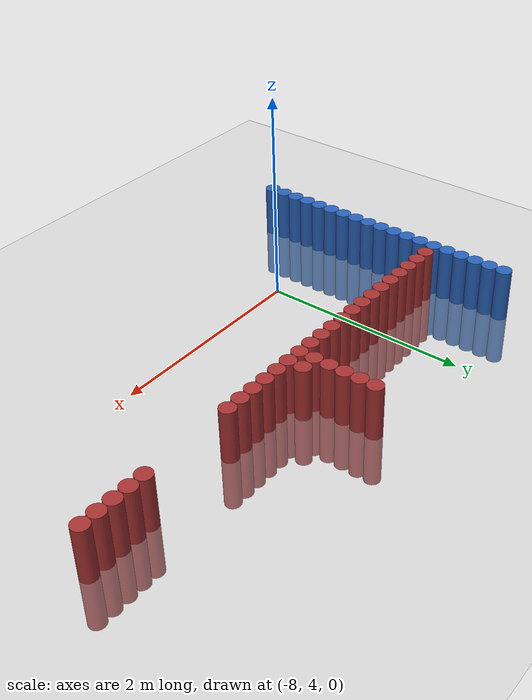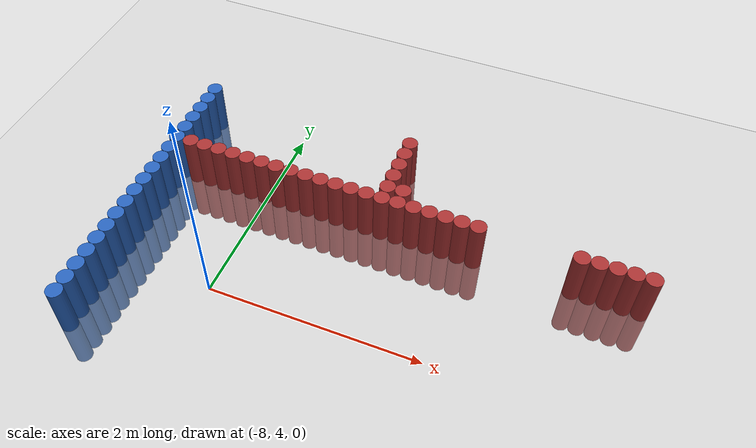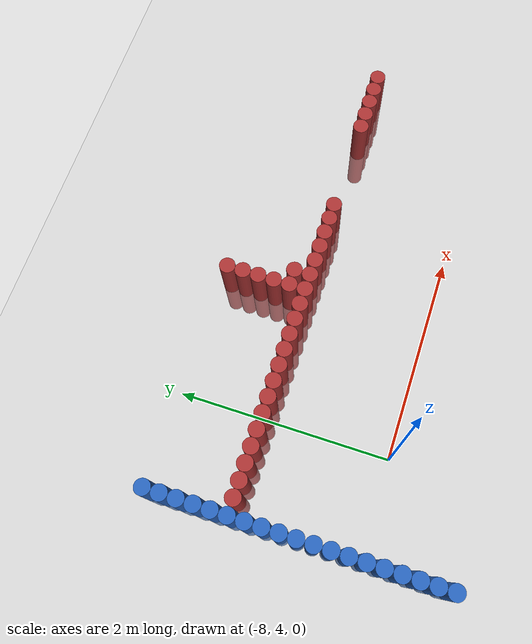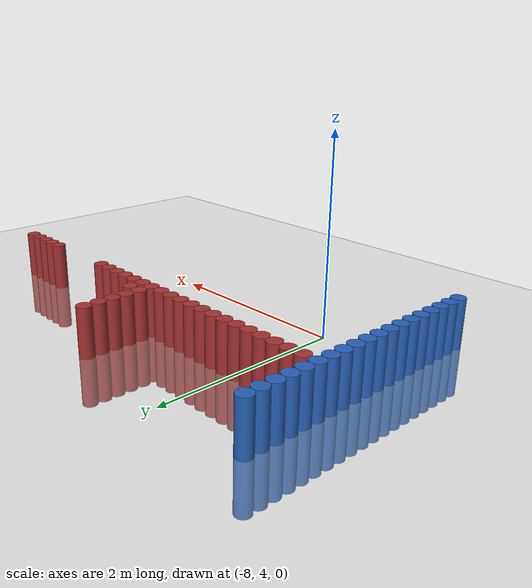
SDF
<sdf version="1.6">
 <world name="default">
  <model name="ground_plane">
   <static>1</static>
   <link name="link">
    <collision name="collision">
     <geometry><plane><normal>0 0 1</normal><size>100 100</size></plane></geometry>
     <surface><friction><ode><mu>100</mu><mu2>50</mu2></ode></friction></surface>
    </collision>
    <visual name="visual">
     <cast_shadows>0</cast_shadows>
     <geometry><plane><normal>0 0 1</normal><size>100 100</size></plane></geometry>
     <material>
      <script><uri>file://media/materials/scripts/gazebo.material</uri><name>Gazebo/Grey</name></script>
     </material>
    </visual>
   </link>
  </model>
  <model name="unit_cylinder_100">
   <static>1</static>
   <pose>-8.925000 3.225000 0.000000 0.000000 0.000000 0.000000</pose>
   <link name="link">
    <inertial>
     <mass>1</mass>
     <inertia><ixx>0.145833</ixx><ixy>0</ixy><ixz>0</ixz><iyy>0.145833</iyy><iyz>0</iyz><izz>0.125</izz></inertia>
    </inertial>
    <collision name="collision">
     <geometry><cylinder><radius>0.075000</radius><length>1</length></cylinder></geometry>
    </collision>
    <visual name="visual">
     <geometry><cylinder><radius>0.075000</radius><length>1</length></cylinder></geometry>
     <material>
      <ambient>0.152000 0.379000 0.720000 1</ambient>
      <diffuse>0.152000 0.379000 0.720000 1</diffuse>
     </material>
     <material>
      <script><name>Gazebo/Grey</name><uri>file://media/materials/scripts/gazebo.material</uri></script>
     </material>
    </visual>
   </link>
  </model>
  <model name="unit_cylinder_102">
   <static>1</static>
   <pose>-8.925000 3.375000 0.000000 0.000000 0.000000 0.000000</pose>
   <link name="link">
    <inertial>
     <mass>1</mass>
     <inertia><ixx>0.145833</ixx><ixy>0</ixy><ixz>0</ixz><iyy>0.145833</iyy><iyz>0</iyz><izz>0.125</izz></inertia>
    </inertial>
    <collision name="collision">
     <geometry><cylinder><radius>0.075000</radius><length>1</length></cylinder></geometry>
    </collision>
    <visual name="visual">
     <geometry><cylinder><radius>0.075000</radius><length>1</length></cylinder></geometry>
     <material>
      <ambient>0.152000 0.379000 0.720000 1</ambient>
      <diffuse>0.152000 0.379000 0.720000 1</diffuse>
     </material>
     <material>
      <script><name>Gazebo/Grey</name><uri>file://media/materials/scripts/gazebo.material</uri></script>
     </material>
    </visual>
   </link>
  </model>
  <model name="unit_cylinder_104">
   <static>1</static>
   <pose>-8.925000 3.525000 0.000000 0.000000 0.000000 0.000000</pose>
   <link name="link">
    <inertial>
     <mass>1</mass>
     <inertia><ixx>0.145833</ixx><ixy>0</ixy><ixz>0</ixz><iyy>0.145833</iyy><iyz>0</iyz><izz>0.125</izz></inertia>
    </inertial>
    <collision name="collision">
     <geometry><cylinder><radius>0.075000</radius><length>1</length></cylinder></geometry>
    </collision>
    <visual name="visual">
     <geometry><cylinder><radius>0.075000</radius><length>1</length></cylinder></geometry>
     <material>
      <ambient>0.152000 0.379000 0.720000 1</ambient>
      <diffuse>0.152000 0.379000 0.720000 1</diffuse>
     </material>
     <material>
      <script><name>Gazebo/Grey</name><uri>file://media/materials/scripts/gazebo.material</uri></script>
     </material>
    </visual>
   </link>
  </model>
  <model name="unit_cylinder_106">
   <static>1</static>
   <pose>-8.925000 3.675000 0.000000 0.000000 0.000000 0.000000</pose>
   <link name="link">
    <inertial>
     <mass>1</mass>
     <inertia><ixx>0.145833</ixx><ixy>0</ixy><ixz>0</ixz><iyy>0.145833</iyy><iyz>0</iyz><izz>0.125</izz></inertia>
    </inertial>
    <collision name="collision">
     <geometry><cylinder><radius>0.075000</radius><length>1</length></cylinder></geometry>
    </collision>
    <visual name="visual">
     <geometry><cylinder><radius>0.075000</radius><length>1</length></cylinder></geometry>
     <material>
      <ambient>0.152000 0.379000 0.720000 1</ambient>
      <diffuse>0.152000 0.379000 0.720000 1</diffuse>
     </material>
     <material>
      <script><name>Gazebo/Grey</name><uri>file://media/materials/scripts/gazebo.material</uri></script>
     </material>
    </visual>
   </link>
  </model>
  <model name="unit_cylinder_108">
   <static>1</static>
   <pose>-8.925000 3.825000 0.000000 0.000000 0.000000 0.000000</pose>
   <link name="link">
    <inertial>
     <mass>1</mass>
     <inertia><ixx>0.145833</ixx><ixy>0</ixy><ixz>0</ixz><iyy>0.145833</iyy><iyz>0</iyz><izz>0.125</izz></inertia>
    </inertial>
    <collision name="collision">
     <geometry><cylinder><radius>0.075000</radius><length>1</length></cylinder></geometry>
    </collision>
    <visual name="visual">
     <geometry><cylinder><radius>0.075000</radius><length>1</length></cylinder></geometry>
     <material>
      <ambient>0.152000 0.379000 0.720000 1</ambient>
      <diffuse>0.152000 0.379000 0.720000 1</diffuse>
     </material>
     <material>
      <script><name>Gazebo/Grey</name><uri>file://media/materials/scripts/gazebo.material</uri></script>
     </material>
    </visual>
   </link>
  </model>
  <model name="unit_cylinder_110">
   <static>1</static>
   <pose>-8.925000 3.975000 0.000000 0.000000 0.000000 0.000000</pose>
   <link name="link">
    <inertial>
     <mass>1</mass>
     <inertia><ixx>0.145833</ixx><ixy>0</ixy><ixz>0</ixz><iyy>0.145833</iyy><iyz>0</iyz><izz>0.125</izz></inertia>
    </inertial>
    <collision name="collision">
     <geometry><cylinder><radius>0.075000</radius><length>1</length></cylinder></geometry>
    </collision>
    <visual name="visual">
     <geometry><cylinder><radius>0.075000</radius><length>1</length></cylinder></geometry>
     <material>
      <ambient>0.152000 0.379000 0.720000 1</ambient>
      <diffuse>0.152000 0.379000 0.720000 1</diffuse>
     </material>
     <material>
      <script><name>Gazebo/Grey</name><uri>file://media/materials/scripts/gazebo.material</uri></script>
     </material>
    </visual>
   </link>
  </model>
  <model name="unit_cylinder_112">
   <static>1</static>
   <pose>-8.925000 4.125000 0.000000 0.000000 0.000000 0.000000</pose>
   <link name="link">
    <inertial>
     <mass>1</mass>
     <inertia><ixx>0.145833</ixx><ixy>0</ixy><ixz>0</ixz><iyy>0.145833</iyy><iyz>0</iyz><izz>0.125</izz></inertia>
    </inertial>
    <collision name="collision">
     <geometry><cylinder><radius>0.075000</radius><length>1</length></cylinder></geometry>
    </collision>
    <visual name="visual">
     <geometry><cylinder><radius>0.075000</radius><length>1</length></cylinder></geometry>
     <material>
      <ambient>0.152000 0.379000 0.720000 1</ambient>
      <diffuse>0.152000 0.379000 0.720000 1</diffuse>
     </material>
     <material>
      <script><name>Gazebo/Grey</name><uri>file://media/materials/scripts/gazebo.material</uri></script>
     </material>
    </visual>
   </link>
  </model>
  <model name="unit_cylinder_114">
   <static>1</static>
   <pose>-8.925000 4.275000 0.000000 0.000000 0.000000 0.000000</pose>
   <link name="link">
    <inertial>
     <mass>1</mass>
     <inertia><ixx>0.145833</ixx><ixy>0</ixy><ixz>0</ixz><iyy>0.145833</iyy><iyz>0</iyz><izz>0.125</izz></inertia>
    </inertial>
    <collision name="collision">
     <geometry><cylinder><radius>0.075000</radius><length>1</length></cylinder></geometry>
    </collision>
    <visual name="visual">
     <geometry><cylinder><radius>0.075000</radius><length>1</length></cylinder></geometry>
     <material>
      <ambient>0.152000 0.379000 0.720000 1</ambient>
      <diffuse>0.152000 0.379000 0.720000 1</diffuse>
     </material>
     <material>
      <script><name>Gazebo/Grey</name><uri>file://media/materials/scripts/gazebo.material</uri></script>
     </material>
    </visual>
   </link>
  </model>
  <model name="unit_cylinder_116">
   <static>1</static>
   <pose>-8.925000 4.425000 0.000000 0.000000 0.000000 0.000000</pose>
   <link name="link">
    <inertial>
     <mass>1</mass>
     <inertia><ixx>0.145833</ixx><ixy>0</ixy><ixz>0</ixz><iyy>0.145833</iyy><iyz>0</iyz><izz>0.125</izz></inertia>
    </inertial>
    <collision name="collision">
     <geometry><cylinder><radius>0.075000</radius><length>1</length></cylinder></geometry>
    </collision>
    <visual name="visual">
     <geometry><cylinder><radius>0.075000</radius><length>1</length></cylinder></geometry>
     <material>
      <ambient>0.152000 0.379000 0.720000 1</ambient>
      <diffuse>0.152000 0.379000 0.720000 1</diffuse>
     </material>
     <material>
      <script><name>Gazebo/Grey</name><uri>file://media/materials/scripts/gazebo.material</uri></script>
     </material>
    </visual>
   </link>
  </model>
  <model name="unit_cylinder_118">
   <static>1</static>
   <pose>-8.925000 4.575000 0.000000 0.000000 0.000000 0.000000</pose>
   <link name="link">
    <inertial>
     <mass>1</mass>
     <inertia><ixx>0.145833</ixx><ixy>0</ixy><ixz>0</ixz><iyy>0.145833</iyy><iyz>0</iyz><izz>0.125</izz></inertia>
    </inertial>
    <collision name="collision">
     <geometry><cylinder><radius>0.075000</radius><length>1</length></cylinder></geometry>
    </collision>
    <visual name="visual">
     <geometry><cylinder><radius>0.075000</radius><length>1</length></cylinder></geometry>
     <material>
      <ambient>0.152000 0.379000 0.720000 1</ambient>
      <diffuse>0.152000 0.379000 0.720000 1</diffuse>
     </material>
     <material>
      <script><name>Gazebo/Grey</name><uri>file://media/materials/scripts/gazebo.material</uri></script>
     </material>
    </visual>
   </link>
  </model>
  <model name="unit_cylinder_120">
   <static>1</static>
   <pose>-8.925000 4.725000 0.000000 0.000000 0.000000 0.000000</pose>
   <link name="link">
    <inertial>
     <mass>1</mass>
     <inertia><ixx>0.145833</ixx><ixy>0</ixy><ixz>0</ixz><iyy>0.145833</iyy><iyz>0</iyz><izz>0.125</izz></inertia>
    </inertial>
    <collision name="collision">
     <geometry><cylinder><radius>0.075000</radius><length>1</length></cylinder></geometry>
    </collision>
    <visual name="visual">
     <geometry><cylinder><radius>0.075000</radius><length>1</length></cylinder></geometry>
     <material>
      <ambient>0.152000 0.379000 0.720000 1</ambient>
      <diffuse>0.152000 0.379000 0.720000 1</diffuse>
     </material>
     <material>
      <script><name>Gazebo/Grey</name><uri>file://media/materials/scripts/gazebo.material</uri></script>
     </material>
    </visual>
   </link>
  </model>
  <model name="unit_cylinder_122">
   <static>1</static>
   <pose>-8.925000 4.875000 0.000000 0.000000 0.000000 0.000000</pose>
   <link name="link">
    <inertial>
     <mass>1</mass>
     <inertia><ixx>0.145833</ixx><ixy>0</ixy><ixz>0</ixz><iyy>0.145833</iyy><iyz>0</iyz><izz>0.125</izz></inertia>
    </inertial>
    <collision name="collision">
     <geometry><cylinder><radius>0.075000</radius><length>1</length></cylinder></geometry>
    </collision>
    <visual name="visual">
     <geometry><cylinder><radius>0.075000</radius><length>1</length></cylinder></geometry>
     <material>
      <ambient>0.152000 0.379000 0.720000 1</ambient>
      <diffuse>0.152000 0.379000 0.720000 1</diffuse>
     </material>
     <material>
      <script><name>Gazebo/Grey</name><uri>file://media/materials/scripts/gazebo.material</uri></script>
     </material>
    </visual>
   </link>
  </model>
  <model name="unit_cylinder_124">
   <static>1</static>
   <pose>-8.925000 5.025000 0.000000 0.000000 0.000000 0.000000</pose>
   <link name="link">
    <inertial>
     <mass>1</mass>
     <inertia><ixx>0.145833</ixx><ixy>0</ixy><ixz>0</ixz><iyy>0.145833</iyy><iyz>0</iyz><izz>0.125</izz></inertia>
    </inertial>
    <collision name="collision">
     <geometry><cylinder><radius>0.075000</radius><length>1</length></cylinder></geometry>
    </collision>
    <visual name="visual">
     <geometry><cylinder><radius>0.075000</radius><length>1</length></cylinder></geometry>
     <material>
      <ambient>0.152000 0.379000 0.720000 1</ambient>
      <diffuse>0.152000 0.379000 0.720000 1</diffuse>
     </material>
     <material>
      <script><name>Gazebo/Grey</name><uri>file://media/materials/scripts/gazebo.material</uri></script>
     </material>
    </visual>
   </link>
  </model>
  <model name="unit_cylinder_125">
   <static>1</static>
   <pose>-8.925000 5.175000 0.000000 0.000000 0.000000 0.000000</pose>
   <link name="link">
    <inertial>
     <mass>1</mass>
     <inertia><ixx>0.145833</ixx><ixy>0</ixy><ixz>0</ixz><iyy>0.145833</iyy><iyz>0</iyz><izz>0.125</izz></inertia>
    </inertial>
    <collision name="collision">
     <geometry><cylinder><radius>0.075000</radius><length>1</length></cylinder></geometry>
    </collision>
    <visual name="visual">
     <geometry><cylinder><radius>0.075000</radius><length>1</length></cylinder></geometry>
     <material>
      <ambient>0.152000 0.379000 0.720000 1</ambient>
      <diffuse>0.152000 0.379000 0.720000 1</diffuse>
     </material>
     <material>
      <script><name>Gazebo/Grey</name><uri>file://media/materials/scripts/gazebo.material</uri></script>
     </material>
    </visual>
   </link>
  </model>
  <model name="unit_cylinder_126">
   <static>1</static>
   <pose>-8.925000 5.325000 0.000000 0.000000 0.000000 0.000000</pose>
   <link name="link">
    <inertial>
     <mass>1</mass>
     <inertia><ixx>0.145833</ixx><ixy>0</ixy><ixz>0</ixz><iyy>0.145833</iyy><iyz>0</iyz><izz>0.125</izz></inertia>
    </inertial>
    <collision name="collision">
     <geometry><cylinder><radius>0.075000</radius><length>1</length></cylinder></geometry>
    </collision>
    <visual name="visual">
     <geometry><cylinder><radius>0.075000</radius><length>1</length></cylinder></geometry>
     <material>
      <ambient>0.152000 0.379000 0.720000 1</ambient>
      <diffuse>0.152000 0.379000 0.720000 1</diffuse>
     </material>
     <material>
      <script><name>Gazebo/Grey</name><uri>file://media/materials/scripts/gazebo.material</uri></script>
     </material>
    </visual>
   </link>
  </model>
  <model name="unit_cylinder_127">
   <static>1</static>
   <pose>-8.925000 5.475000 0.000000 0.000000 0.000000 0.000000</pose>
   <link name="link">
    <inertial>
     <mass>1</mass>
     <inertia><ixx>0.145833</ixx><ixy>0</ixy><ixz>0</ixz><iyy>0.145833</iyy><iyz>0</iyz><izz>0.125</izz></inertia>
    </inertial>
    <collision name="collision">
     <geometry><cylinder><radius>0.075000</radius><length>1</length></cylinder></geometry>
    </collision>
    <visual name="visual">
     <geometry><cylinder><radius>0.075000</radius><length>1</length></cylinder></geometry>
     <material>
      <ambient>0.152000 0.379000 0.720000 1</ambient>
      <diffuse>0.152000 0.379000 0.720000 1</diffuse>
     </material>
     <material>
      <script><name>Gazebo/Grey</name><uri>file://media/materials/scripts/gazebo.material</uri></script>
     </material>
    </visual>
   </link>
  </model>
  <model name="unit_cylinder_128">
   <static>1</static>
   <pose>-8.925000 5.625000 0.000000 0.000000 0.000000 0.000000</pose>
   <link name="link">
    <inertial>
     <mass>1</mass>
     <inertia><ixx>0.145833</ixx><ixy>0</ixy><ixz>0</ixz><iyy>0.145833</iyy><iyz>0</iyz><izz>0.125</izz></inertia>
    </inertial>
    <collision name="collision">
     <geometry><cylinder><radius>0.075000</radius><length>1</length></cylinder></geometry>
    </collision>
    <visual name="visual">
     <geometry><cylinder><radius>0.075000</radius><length>1</length></cylinder></geometry>
     <material>
      <ambient>0.152000 0.379000 0.720000 1</ambient>
      <diffuse>0.152000 0.379000 0.720000 1</diffuse>
     </material>
     <material>
      <script><name>Gazebo/Grey</name><uri>file://media/materials/scripts/gazebo.material</uri></script>
     </material>
    </visual>
   </link>
  </model>
  <model name="unit_cylinder_129">
   <static>1</static>
   <pose>-8.925000 5.775000 0.000000 0.000000 0.000000 0.000000</pose>
   <link name="link">
    <inertial>
     <mass>1</mass>
     <inertia><ixx>0.145833</ixx><ixy>0</ixy><ixz>0</ixz><iyy>0.145833</iyy><iyz>0</iyz><izz>0.125</izz></inertia>
    </inertial>
    <collision name="collision">
     <geometry><cylinder><radius>0.075000</radius><length>1</length></cylinder></geometry>
    </collision>
    <visual name="visual">
     <geometry><cylinder><radius>0.075000</radius><length>1</length></cylinder></geometry>
     <material>
      <ambient>0.152000 0.379000 0.720000 1</ambient>
      <diffuse>0.152000 0.379000 0.720000 1</diffuse>
     </material>
     <material>
      <script><name>Gazebo/Grey</name><uri>file://media/materials/scripts/gazebo.material</uri></script>
     </material>
    </visual>
   </link>
  </model>
  <model name="unit_cylinder_130">
   <static>1</static>
   <pose>-8.925000 5.925000 0.000000 0.000000 0.000000 0.000000</pose>
   <link name="link">
    <inertial>
     <mass>1</mass>
     <inertia><ixx>0.145833</ixx><ixy>0</ixy><ixz>0</ixz><iyy>0.145833</iyy><iyz>0</iyz><izz>0.125</izz></inertia>
    </inertial>
    <collision name="collision">
     <geometry><cylinder><radius>0.075000</radius><length>1</length></cylinder></geometry>
    </collision>
    <visual name="visual">
     <geometry><cylinder><radius>0.075000</radius><length>1</length></cylinder></geometry>
     <material>
      <ambient>0.152000 0.379000 0.720000 1</ambient>
      <diffuse>0.152000 0.379000 0.720000 1</diffuse>
     </material>
     <material>
      <script><name>Gazebo/Grey</name><uri>file://media/materials/scripts/gazebo.material</uri></script>
     </material>
    </visual>
   </link>
  </model>
  <model name="unit_cylinder_155">
   <static>1</static>
   <pose>-8.775000 5.175000 0.000000 0.000000 0.000000 0.000000</pose>
   <link name="link">
    <inertial>
     <mass>1</mass>
     <inertia><ixx>0.145833</ixx><ixy>0</ixy><ixz>0</ixz><iyy>0.145833</iyy><iyz>0</iyz><izz>0.125</izz></inertia>
    </inertial>
    <collision name="collision">
     <geometry><cylinder><radius>0.075000</radius><length>1</length></cylinder></geometry>
    </collision>
    <visual name="visual">
     <geometry><cylinder><radius>0.075000</radius><length>1</length></cylinder></geometry>
     <material>
      <ambient>0.648000 0.192000 0.192000 1</ambient>
      <diffuse>0.648000 0.192000 0.192000 1</diffuse>
     </material>
     <material>
      <script><name>Gazebo/Grey</name><uri>file://media/materials/scripts/gazebo.material</uri></script>
     </material>
    </visual>
   </link>
  </model>
  <model name="unit_cylinder_157">
   <static>1</static>
   <pose>-8.625000 5.175000 0.000000 0.000000 0.000000 0.000000</pose>
   <link name="link">
    <inertial>
     <mass>1</mass>
     <inertia><ixx>0.145833</ixx><ixy>0</ixy><ixz>0</ixz><iyy>0.145833</iyy><iyz>0</iyz><izz>0.125</izz></inertia>
    </inertial>
    <collision name="collision">
     <geometry><cylinder><radius>0.075000</radius><length>1</length></cylinder></geometry>
    </collision>
    <visual name="visual">
     <geometry><cylinder><radius>0.075000</radius><length>1</length></cylinder></geometry>
     <material>
      <ambient>0.648000 0.192000 0.192000 1</ambient>
      <diffuse>0.648000 0.192000 0.192000 1</diffuse>
     </material>
     <material>
      <script><name>Gazebo/Grey</name><uri>file://media/materials/scripts/gazebo.material</uri></script>
     </material>
    </visual>
   </link>
  </model>
  <model name="unit_cylinder_159">
   <static>1</static>
   <pose>-8.475000 5.175000 0.000000 0.000000 0.000000 0.000000</pose>
   <link name="link">
    <inertial>
     <mass>1</mass>
     <inertia><ixx>0.145833</ixx><ixy>0</ixy><ixz>0</ixz><iyy>0.145833</iyy><iyz>0</iyz><izz>0.125</izz></inertia>
    </inertial>
    <collision name="collision">
     <geometry><cylinder><radius>0.075000</radius><length>1</length></cylinder></geometry>
    </collision>
    <visual name="visual">
     <geometry><cylinder><radius>0.075000</radius><length>1</length></cylinder></geometry>
     <material>
      <ambient>0.648000 0.192000 0.192000 1</ambient>
      <diffuse>0.648000 0.192000 0.192000 1</diffuse>
     </material>
     <material>
      <script><name>Gazebo/Grey</name><uri>file://media/materials/scripts/gazebo.material</uri></script>
     </material>
    </visual>
   </link>
  </model>
  <model name="unit_cylinder_179">
   <static>1</static>
   <pose>-8.325000 5.175000 0.000000 0.000000 0.000000 0.000000</pose>
   <link name="link">
    <inertial>
     <mass>1</mass>
     <inertia><ixx>0.145833</ixx><ixy>0</ixy><ixz>0</ixz><iyy>0.145833</iyy><iyz>0</iyz><izz>0.125</izz></inertia>
    </inertial>
    <collision name="collision">
     <geometry><cylinder><radius>0.075000</radius><length>1</length></cylinder></geometry>
    </collision>
    <visual name="visual">
     <geometry><cylinder><radius>0.075000</radius><length>1</length></cylinder></geometry>
     <material>
      <ambient>0.648000 0.192000 0.192000 1</ambient>
      <diffuse>0.648000 0.192000 0.192000 1</diffuse>
     </material>
     <material>
      <script><name>Gazebo/Grey</name><uri>file://media/materials/scripts/gazebo.material</uri></script>
     </material>
    </visual>
   </link>
  </model>
  <model name="unit_cylinder_181">
   <static>1</static>
   <pose>-8.175000 5.175000 0.000000 0.000000 0.000000 0.000000</pose>
   <link name="link">
    <inertial>
     <mass>1</mass>
     <inertia><ixx>0.145833</ixx><ixy>0</ixy><ixz>0</ixz><iyy>0.145833</iyy><iyz>0</iyz><izz>0.125</izz></inertia>
    </inertial>
    <collision name="collision">
     <geometry><cylinder><radius>0.075000</radius><length>1</length></cylinder></geometry>
    </collision>
    <visual name="visual">
     <geometry><cylinder><radius>0.075000</radius><length>1</length></cylinder></geometry>
     <material>
      <ambient>0.648000 0.192000 0.192000 1</ambient>
      <diffuse>0.648000 0.192000 0.192000 1</diffuse>
     </material>
     <material>
      <script><name>Gazebo/Grey</name><uri>file://media/materials/scripts/gazebo.material</uri></script>
     </material>
    </visual>
   </link>
  </model>
  <model name="unit_cylinder_183">
   <static>1</static>
   <pose>-8.025000 5.175000 0.000000 0.000000 0.000000 0.000000</pose>
   <link name="link">
    <inertial>
     <mass>1</mass>
     <inertia><ixx>0.145833</ixx><ixy>0</ixy><ixz>0</ixz><iyy>0.145833</iyy><iyz>0</iyz><izz>0.125</izz></inertia>
    </inertial>
    <collision name="collision">
     <geometry><cylinder><radius>0.075000</radius><length>1</length></cylinder></geometry>
    </collision>
    <visual name="visual">
     <geometry><cylinder><radius>0.075000</radius><length>1</length></cylinder></geometry>
     <material>
      <ambient>0.648000 0.192000 0.192000 1</ambient>
      <diffuse>0.648000 0.192000 0.192000 1</diffuse>
     </material>
     <material>
      <script><name>Gazebo/Grey</name><uri>file://media/materials/scripts/gazebo.material</uri></script>
     </material>
    </visual>
   </link>
  </model>
  <model name="unit_cylinder_186">
   <static>1</static>
   <pose>-7.875000 5.175000 0.000000 0.000000 0.000000 0.000000</pose>
   <link name="link">
    <inertial>
     <mass>1</mass>
     <inertia><ixx>0.145833</ixx><ixy>0</ixy><ixz>0</ixz><iyy>0.145833</iyy><iyz>0</iyz><izz>0.125</izz></inertia>
    </inertial>
    <collision name="collision">
     <geometry><cylinder><radius>0.075000</radius><length>1</length></cylinder></geometry>
    </collision>
    <visual name="visual">
     <geometry><cylinder><radius>0.075000</radius><length>1</length></cylinder></geometry>
     <material>
      <ambient>0.648000 0.192000 0.192000 1</ambient>
      <diffuse>0.648000 0.192000 0.192000 1</diffuse>
     </material>
     <material>
      <script><name>Gazebo/Grey</name><uri>file://media/materials/scripts/gazebo.material</uri></script>
     </material>
    </visual>
   </link>
  </model>
  <model name="unit_cylinder_188">
   <static>1</static>
   <pose>-7.725000 5.175000 0.000000 0.000000 0.000000 0.000000</pose>
   <link name="link">
    <inertial>
     <mass>1</mass>
     <inertia><ixx>0.145833</ixx><ixy>0</ixy><ixz>0</ixz><iyy>0.145833</iyy><iyz>0</iyz><izz>0.125</izz></inertia>
    </inertial>
    <collision name="collision">
     <geometry><cylinder><radius>0.075000</radius><length>1</length></cylinder></geometry>
    </collision>
    <visual name="visual">
     <geometry><cylinder><radius>0.075000</radius><length>1</length></cylinder></geometry>
     <material>
      <ambient>0.648000 0.192000 0.192000 1</ambient>
      <diffuse>0.648000 0.192000 0.192000 1</diffuse>
     </material>
     <material>
      <script><name>Gazebo/Grey</name><uri>file://media/materials/scripts/gazebo.material</uri></script>
     </material>
    </visual>
   </link>
  </model>
  <model name="unit_cylinder_190">
   <static>1</static>
   <pose>-7.575000 5.175000 0.000000 0.000000 0.000000 0.000000</pose>
   <link name="link">
    <inertial>
     <mass>1</mass>
     <inertia><ixx>0.145833</ixx><ixy>0</ixy><ixz>0</ixz><iyy>0.145833</iyy><iyz>0</iyz><izz>0.125</izz></inertia>
    </inertial>
    <collision name="collision">
     <geometry><cylinder><radius>0.075000</radius><length>1</length></cylinder></geometry>
    </collision>
    <visual name="visual">
     <geometry><cylinder><radius>0.075000</radius><length>1</length></cylinder></geometry>
     <material>
      <ambient>0.648000 0.192000 0.192000 1</ambient>
      <diffuse>0.648000 0.192000 0.192000 1</diffuse>
     </material>
     <material>
      <script><name>Gazebo/Grey</name><uri>file://media/materials/scripts/gazebo.material</uri></script>
     </material>
    </visual>
   </link>
  </model>
  <model name="unit_cylinder_192">
   <static>1</static>
   <pose>-7.425000 5.175000 0.000000 0.000000 0.000000 0.000000</pose>
   <link name="link">
    <inertial>
     <mass>1</mass>
     <inertia><ixx>0.145833</ixx><ixy>0</ixy><ixz>0</ixz><iyy>0.145833</iyy><iyz>0</iyz><izz>0.125</izz></inertia>
    </inertial>
    <collision name="collision">
     <geometry><cylinder><radius>0.075000</radius><length>1</length></cylinder></geometry>
    </collision>
    <visual name="visual">
     <geometry><cylinder><radius>0.075000</radius><length>1</length></cylinder></geometry>
     <material>
      <ambient>0.648000 0.192000 0.192000 1</ambient>
      <diffuse>0.648000 0.192000 0.192000 1</diffuse>
     </material>
     <material>
      <script><name>Gazebo/Grey</name><uri>file://media/materials/scripts/gazebo.material</uri></script>
     </material>
    </visual>
   </link>
  </model>
  <model name="unit_cylinder_194">
   <static>1</static>
   <pose>-7.275000 5.175000 0.000000 0.000000 0.000000 0.000000</pose>
   <link name="link">
    <inertial>
     <mass>1</mass>
     <inertia><ixx>0.145833</ixx><ixy>0</ixy><ixz>0</ixz><iyy>0.145833</iyy><iyz>0</iyz><izz>0.125</izz></inertia>
    </inertial>
    <collision name="collision">
     <geometry><cylinder><radius>0.075000</radius><length>1</length></cylinder></geometry>
    </collision>
    <visual name="visual">
     <geometry><cylinder><radius>0.075000</radius><length>1</length></cylinder></geometry>
     <material>
      <ambient>0.648000 0.192000 0.192000 1</ambient>
      <diffuse>0.648000 0.192000 0.192000 1</diffuse>
     </material>
     <material>
      <script><name>Gazebo/Grey</name><uri>file://media/materials/scripts/gazebo.material</uri></script>
     </material>
    </visual>
   </link>
  </model>
  <model name="unit_cylinder_196">
   <static>1</static>
   <pose>-7.125000 5.175000 0.000000 0.000000 0.000000 0.000000</pose>
   <link name="link">
    <inertial>
     <mass>1</mass>
     <inertia><ixx>0.145833</ixx><ixy>0</ixy><ixz>0</ixz><iyy>0.145833</iyy><iyz>0</iyz><izz>0.125</izz></inertia>
    </inertial>
    <collision name="collision">
     <geometry><cylinder><radius>0.075000</radius><length>1</length></cylinder></geometry>
    </collision>
    <visual name="visual">
     <geometry><cylinder><radius>0.075000</radius><length>1</length></cylinder></geometry>
     <material>
      <ambient>0.648000 0.192000 0.192000 1</ambient>
      <diffuse>0.648000 0.192000 0.192000 1</diffuse>
     </material>
     <material>
      <script><name>Gazebo/Grey</name><uri>file://media/materials/scripts/gazebo.material</uri></script>
     </material>
    </visual>
   </link>
  </model>
  <model name="unit_cylinder_200">
   <static>1</static>
   <pose>-6.975000 5.175000 0.000000 0.000000 0.000000 0.000000</pose>
   <link name="link">
    <inertial>
     <mass>1</mass>
     <inertia><ixx>0.145833</ixx><ixy>0</ixy><ixz>0</ixz><iyy>0.145833</iyy><iyz>0</iyz><izz>0.125</izz></inertia>
    </inertial>
    <collision name="collision">
     <geometry><cylinder><radius>0.075000</radius><length>1</length></cylinder></geometry>
    </collision>
    <visual name="visual">
     <geometry><cylinder><radius>0.075000</radius><length>1</length></cylinder></geometry>
     <material>
      <ambient>0.648000 0.192000 0.192000 1</ambient>
      <diffuse>0.648000 0.192000 0.192000 1</diffuse>
     </material>
     <material>
      <script><name>Gazebo/Grey</name><uri>file://media/materials/scripts/gazebo.material</uri></script>
     </material>
    </visual>
   </link>
  </model>
  <model name="unit_cylinder_209">
   <static>1</static>
   <pose>-6.825000 5.175000 0.000000 0.000000 0.000000 0.000000</pose>
   <link name="link">
    <inertial>
     <mass>1</mass>
     <inertia><ixx>0.145833</ixx><ixy>0</ixy><ixz>0</ixz><iyy>0.145833</iyy><iyz>0</iyz><izz>0.125</izz></inertia>
    </inertial>
    <collision name="collision">
     <geometry><cylinder><radius>0.075000</radius><length>1</length></cylinder></geometry>
    </collision>
    <visual name="visual">
     <geometry><cylinder><radius>0.075000</radius><length>1</length></cylinder></geometry>
     <material>
      <ambient>0.648000 0.192000 0.192000 1</ambient>
      <diffuse>0.648000 0.192000 0.192000 1</diffuse>
     </material>
     <material>
      <script><name>Gazebo/Grey</name><uri>file://media/materials/scripts/gazebo.material</uri></script>
     </material>
    </visual>
   </link>
  </model>
  <model name="unit_cylinder_210">
   <static>1</static>
   <pose>-6.825000 5.325000 0.000000 0.000000 0.000000 0.000000</pose>
   <link name="link">
    <inertial>
     <mass>1</mass>
     <inertia><ixx>0.145833</ixx><ixy>0</ixy><ixz>0</ixz><iyy>0.145833</iyy><iyz>0</iyz><izz>0.125</izz></inertia>
    </inertial>
    <collision name="collision">
     <geometry><cylinder><radius>0.075000</radius><length>1</length></cylinder></geometry>
    </collision>
    <visual name="visual">
     <geometry><cylinder><radius>0.075000</radius><length>1</length></cylinder></geometry>
     <material>
      <ambient>0.648000 0.192000 0.192000 1</ambient>
      <diffuse>0.648000 0.192000 0.192000 1</diffuse>
     </material>
     <material>
      <script><name>Gazebo/Grey</name><uri>file://media/materials/scripts/gazebo.material</uri></script>
     </material>
    </visual>
   </link>
  </model>
  <model name="unit_cylinder_211">
   <static>1</static>
   <pose>-6.825000 5.475000 0.000000 0.000000 0.000000 0.000000</pose>
   <link name="link">
    <inertial>
     <mass>1</mass>
     <inertia><ixx>0.145833</ixx><ixy>0</ixy><ixz>0</ixz><iyy>0.145833</iyy><iyz>0</iyz><izz>0.125</izz></inertia>
    </inertial>
    <collision name="collision">
     <geometry><cylinder><radius>0.075000</radius><length>1</length></cylinder></geometry>
    </collision>
    <visual name="visual">
     <geometry><cylinder><radius>0.075000</radius><length>1</length></cylinder></geometry>
     <material>
      <ambient>0.648000 0.192000 0.192000 1</ambient>
      <diffuse>0.648000 0.192000 0.192000 1</diffuse>
     </material>
     <material>
      <script><name>Gazebo/Grey</name><uri>file://media/materials/scripts/gazebo.material</uri></script>
     </material>
    </visual>
   </link>
  </model>
  <model name="unit_cylinder_212">
   <static>1</static>
   <pose>-6.825000 5.625000 0.000000 0.000000 0.000000 0.000000</pose>
   <link name="link">
    <inertial>
     <mass>1</mass>
     <inertia><ixx>0.145833</ixx><ixy>0</ixy><ixz>0</ixz><iyy>0.145833</iyy><iyz>0</iyz><izz>0.125</izz></inertia>
    </inertial>
    <collision name="collision">
     <geometry><cylinder><radius>0.075000</radius><length>1</length></cylinder></geometry>
    </collision>
    <visual name="visual">
     <geometry><cylinder><radius>0.075000</radius><length>1</length></cylinder></geometry>
     <material>
      <ambient>0.648000 0.192000 0.192000 1</ambient>
      <diffuse>0.648000 0.192000 0.192000 1</diffuse>
     </material>
     <material>
      <script><name>Gazebo/Grey</name><uri>file://media/materials/scripts/gazebo.material</uri></script>
     </material>
    </visual>
   </link>
  </model>
  <model name="unit_cylinder_213">
   <static>1</static>
   <pose>-6.825000 5.775000 0.000000 0.000000 0.000000 0.000000</pose>
   <link name="link">
    <inertial>
     <mass>1</mass>
     <inertia><ixx>0.145833</ixx><ixy>0</ixy><ixz>0</ixz><iyy>0.145833</iyy><iyz>0</iyz><izz>0.125</izz></inertia>
    </inertial>
    <collision name="collision">
     <geometry><cylinder><radius>0.075000</radius><length>1</length></cylinder></geometry>
    </collision>
    <visual name="visual">
     <geometry><cylinder><radius>0.075000</radius><length>1</length></cylinder></geometry>
     <material>
      <ambient>0.648000 0.192000 0.192000 1</ambient>
      <diffuse>0.648000 0.192000 0.192000 1</diffuse>
     </material>
     <material>
      <script><name>Gazebo/Grey</name><uri>file://media/materials/scripts/gazebo.material</uri></script>
     </material>
    </visual>
   </link>
  </model>
  <model name="unit_cylinder_214">
   <static>1</static>
   <pose>-6.825000 5.925000 0.000000 0.000000 0.000000 0.000000</pose>
   <link name="link">
    <inertial>
     <mass>1</mass>
     <inertia><ixx>0.145833</ixx><ixy>0</ixy><ixz>0</ixz><iyy>0.145833</iyy><iyz>0</iyz><izz>0.125</izz></inertia>
    </inertial>
    <collision name="collision">
     <geometry><cylinder><radius>0.075000</radius><length>1</length></cylinder></geometry>
    </collision>
    <visual name="visual">
     <geometry><cylinder><radius>0.075000</radius><length>1</length></cylinder></geometry>
     <material>
      <ambient>0.648000 0.192000 0.192000 1</ambient>
      <diffuse>0.648000 0.192000 0.192000 1</diffuse>
     </material>
     <material>
      <script><name>Gazebo/Grey</name><uri>file://media/materials/scripts/gazebo.material</uri></script>
     </material>
    </visual>
   </link>
  </model>
  <model name="unit_cylinder_222">
   <static>1</static>
   <pose>-6.675000 5.175000 0.000000 0.000000 0.000000 0.000000</pose>
   <link name="link">
    <inertial>
     <mass>1</mass>
     <inertia><ixx>0.145833</ixx><ixy>0</ixy><ixz>0</ixz><iyy>0.145833</iyy><iyz>0</iyz><izz>0.125</izz></inertia>
    </inertial>
    <collision name="collision">
     <geometry><cylinder><radius>0.075000</radius><length>1</length></cylinder></geometry>
    </collision>
    <visual name="visual">
     <geometry><cylinder><radius>0.075000</radius><length>1</length></cylinder></geometry>
     <material>
      <ambient>0.648000 0.192000 0.192000 1</ambient>
      <diffuse>0.648000 0.192000 0.192000 1</diffuse>
     </material>
     <material>
      <script><name>Gazebo/Grey</name><uri>file://media/materials/scripts/gazebo.material</uri></script>
     </material>
    </visual>
   </link>
  </model>
  <model name="unit_cylinder_223">
   <static>1</static>
   <pose>-6.675000 5.325000 0.000000 0.000000 0.000000 0.000000</pose>
   <link name="link">
    <inertial>
     <mass>1</mass>
     <inertia><ixx>0.145833</ixx><ixy>0</ixy><ixz>0</ixz><iyy>0.145833</iyy><iyz>0</iyz><izz>0.125</izz></inertia>
    </inertial>
    <collision name="collision">
     <geometry><cylinder><radius>0.075000</radius><length>1</length></cylinder></geometry>
    </collision>
    <visual name="visual">
     <geometry><cylinder><radius>0.075000</radius><length>1</length></cylinder></geometry>
     <material>
      <ambient>0.648000 0.192000 0.192000 1</ambient>
      <diffuse>0.648000 0.192000 0.192000 1</diffuse>
     </material>
     <material>
      <script><name>Gazebo/Grey</name><uri>file://media/materials/scripts/gazebo.material</uri></script>
     </material>
    </visual>
   </link>
  </model>
  <model name="unit_cylinder_232">
   <static>1</static>
   <pose>-6.525000 5.175000 0.000000 0.000000 0.000000 0.000000</pose>
   <link name="link">
    <inertial>
     <mass>1</mass>
     <inertia><ixx>0.145833</ixx><ixy>0</ixy><ixz>0</ixz><iyy>0.145833</iyy><iyz>0</iyz><izz>0.125</izz></inertia>
    </inertial>
    <collision name="collision">
     <geometry><cylinder><radius>0.075000</radius><length>1</length></cylinder></geometry>
    </collision>
    <visual name="visual">
     <geometry><cylinder><radius>0.075000</radius><length>1</length></cylinder></geometry>
     <material>
      <ambient>0.648000 0.192000 0.192000 1</ambient>
      <diffuse>0.648000 0.192000 0.192000 1</diffuse>
     </material>
     <material>
      <script><name>Gazebo/Grey</name><uri>file://media/materials/scripts/gazebo.material</uri></script>
     </material>
    </visual>
   </link>
  </model>
  <model name="unit_cylinder_239">
   <static>1</static>
   <pose>-6.375000 5.175000 0.000000 0.000000 0.000000 0.000000</pose>
   <link name="link">
    <inertial>
     <mass>1</mass>
     <inertia><ixx>0.145833</ixx><ixy>0</ixy><ixz>0</ixz><iyy>0.145833</iyy><iyz>0</iyz><izz>0.125</izz></inertia>
    </inertial>
    <collision name="collision">
     <geometry><cylinder><radius>0.075000</radius><length>1</length></cylinder></geometry>
    </collision>
    <visual name="visual">
     <geometry><cylinder><radius>0.075000</radius><length>1</length></cylinder></geometry>
     <material>
      <ambient>0.648000 0.192000 0.192000 1</ambient>
      <diffuse>0.648000 0.192000 0.192000 1</diffuse>
     </material>
     <material>
      <script><name>Gazebo/Grey</name><uri>file://media/materials/scripts/gazebo.material</uri></script>
     </material>
    </visual>
   </link>
  </model>
  <model name="unit_cylinder_246">
   <static>1</static>
   <pose>-6.225000 5.175000 0.000000 0.000000 0.000000 0.000000</pose>
   <link name="link">
    <inertial>
     <mass>1</mass>
     <inertia><ixx>0.145833</ixx><ixy>0</ixy><ixz>0</ixz><iyy>0.145833</iyy><iyz>0</iyz><izz>0.125</izz></inertia>
    </inertial>
    <collision name="collision">
     <geometry><cylinder><radius>0.075000</radius><length>1</length></cylinder></geometry>
    </collision>
    <visual name="visual">
     <geometry><cylinder><radius>0.075000</radius><length>1</length></cylinder></geometry>
     <material>
      <ambient>0.648000 0.192000 0.192000 1</ambient>
      <diffuse>0.648000 0.192000 0.192000 1</diffuse>
     </material>
     <material>
      <script><name>Gazebo/Grey</name><uri>file://media/materials/scripts/gazebo.material</uri></script>
     </material>
    </visual>
   </link>
  </model>
  <model name="unit_cylinder_250">
   <static>1</static>
   <pose>-6.075000 5.175000 0.000000 0.000000 0.000000 0.000000</pose>
   <link name="link">
    <inertial>
     <mass>1</mass>
     <inertia><ixx>0.145833</ixx><ixy>0</ixy><ixz>0</ixz><iyy>0.145833</iyy><iyz>0</iyz><izz>0.125</izz></inertia>
    </inertial>
    <collision name="collision">
     <geometry><cylinder><radius>0.075000</radius><length>1</length></cylinder></geometry>
    </collision>
    <visual name="visual">
     <geometry><cylinder><radius>0.075000</radius><length>1</length></cylinder></geometry>
     <material>
      <ambient>0.648000 0.192000 0.192000 1</ambient>
      <diffuse>0.648000 0.192000 0.192000 1</diffuse>
     </material>
     <material>
      <script><name>Gazebo/Grey</name><uri>file://media/materials/scripts/gazebo.material</uri></script>
     </material>
    </visual>
   </link>
  </model>
  <model name="unit_cylinder_253">
   <static>1</static>
   <pose>-5.925000 5.175000 0.000000 0.000000 0.000000 0.000000</pose>
   <link name="link">
    <inertial>
     <mass>1</mass>
     <inertia><ixx>0.145833</ixx><ixy>0</ixy><ixz>0</ixz><iyy>0.145833</iyy><iyz>0</iyz><izz>0.125</izz></inertia>
    </inertial>
    <collision name="collision">
     <geometry><cylinder><radius>0.075000</radius><length>1</length></cylinder></geometry>
    </collision>
    <visual name="visual">
     <geometry><cylinder><radius>0.075000</radius><length>1</length></cylinder></geometry>
     <material>
      <ambient>0.648000 0.192000 0.192000 1</ambient>
      <diffuse>0.648000 0.192000 0.192000 1</diffuse>
     </material>
     <material>
      <script><name>Gazebo/Grey</name><uri>file://media/materials/scripts/gazebo.material</uri></script>
     </material>
    </visual>
   </link>
  </model>
  <model name="unit_cylinder_284">
   <static>1</static>
   <pose>-5.025000 5.175000 0.000000 0.000000 0.000000 0.000000</pose>
   <link name="link">
    <inertial>
     <mass>1</mass>
     <inertia><ixx>0.145833</ixx><ixy>0</ixy><ixz>0</ixz><iyy>0.145833</iyy><iyz>0</iyz><izz>0.125</izz></inertia>
    </inertial>
    <collision name="collision">
     <geometry><cylinder><radius>0.075000</radius><length>1</length></cylinder></geometry>
    </collision>
    <visual name="visual">
     <geometry><cylinder><radius>0.075000</radius><length>1</length></cylinder></geometry>
     <material>
      <ambient>0.648000 0.192000 0.192000 1</ambient>
      <diffuse>0.648000 0.192000 0.192000 1</diffuse>
     </material>
     <material>
      <script><name>Gazebo/Grey</name><uri>file://media/materials/scripts/gazebo.material</uri></script>
     </material>
    </visual>
   </link>
  </model>
  <model name="unit_cylinder_285">
   <static>1</static>
   <pose>-4.875000 5.175000 0.000000 0.000000 0.000000 0.000000</pose>
   <link name="link">
    <inertial>
     <mass>1</mass>
     <inertia><ixx>0.145833</ixx><ixy>0</ixy><ixz>0</ixz><iyy>0.145833</iyy><iyz>0</iyz><izz>0.125</izz></inertia>
    </inertial>
    <collision name="collision">
     <geometry><cylinder><radius>0.075000</radius><length>1</length></cylinder></geometry>
    </collision>
    <visual name="visual">
     <geometry><cylinder><radius>0.075000</radius><length>1</length></cylinder></geometry>
     <material>
      <ambient>0.648000 0.192000 0.192000 1</ambient>
      <diffuse>0.648000 0.192000 0.192000 1</diffuse>
     </material>
     <material>
      <script><name>Gazebo/Grey</name><uri>file://media/materials/scripts/gazebo.material</uri></script>
     </material>
    </visual>
   </link>
  </model>
  <model name="unit_cylinder_286">
   <static>1</static>
   <pose>-4.725000 5.175000 0.000000 0.000000 0.000000 0.000000</pose>
   <link name="link">
    <inertial>
     <mass>1</mass>
     <inertia><ixx>0.145833</ixx><ixy>0</ixy><ixz>0</ixz><iyy>0.145833</iyy><iyz>0</iyz><izz>0.125</izz></inertia>
    </inertial>
    <collision name="collision">
     <geometry><cylinder><radius>0.075000</radius><length>1</length></cylinder></geometry>
    </collision>
    <visual name="visual">
     <geometry><cylinder><radius>0.075000</radius><length>1</length></cylinder></geometry>
     <material>
      <ambient>0.648000 0.192000 0.192000 1</ambient>
      <diffuse>0.648000 0.192000 0.192000 1</diffuse>
     </material>
     <material>
      <script><name>Gazebo/Grey</name><uri>file://media/materials/scripts/gazebo.material</uri></script>
     </material>
    </visual>
   </link>
  </model>
  <model name="unit_cylinder_287">
   <static>1</static>
   <pose>-4.575000 5.175000 0.000000 0.000000 0.000000 0.000000</pose>
   <link name="link">
    <inertial>
     <mass>1</mass>
     <inertia><ixx>0.145833</ixx><ixy>0</ixy><ixz>0</ixz><iyy>0.145833</iyy><iyz>0</iyz><izz>0.125</izz></inertia>
    </inertial>
    <collision name="collision">
     <geometry><cylinder><radius>0.075000</radius><length>1</length></cylinder></geometry>
    </collision>
    <visual name="visual">
     <geometry><cylinder><radius>0.075000</radius><length>1</length></cylinder></geometry>
     <material>
      <ambient>0.648000 0.192000 0.192000 1</ambient>
      <diffuse>0.648000 0.192000 0.192000 1</diffuse>
     </material>
     <material>
      <script><name>Gazebo/Grey</name><uri>file://media/materials/scripts/gazebo.material</uri></script>
     </material>
    </visual>
   </link>
  </model>
  <model name="unit_cylinder_288">
   <static>1</static>
   <pose>-4.425000 5.175000 0.000000 0.000000 0.000000 0.000000</pose>
   <link name="link">
    <inertial>
     <mass>1</mass>
     <inertia><ixx>0.145833</ixx><ixy>0</ixy><ixz>0</ixz><iyy>0.145833</iyy><iyz>0</iyz><izz>0.125</izz></inertia>
    </inertial>
    <collision name="collision">
     <geometry><cylinder><radius>0.075000</radius><length>1</length></cylinder></geometry>
    </collision>
    <visual name="visual">
     <geometry><cylinder><radius>0.075000</radius><length>1</length></cylinder></geometry>
     <material>
      <ambient>0.648000 0.192000 0.192000 1</ambient>
      <diffuse>0.648000 0.192000 0.192000 1</diffuse>
     </material>
     <material>
      <script><name>Gazebo/Grey</name><uri>file://media/materials/scripts/gazebo.material</uri></script>
     </material>
    </visual>
   </link>
  </model>
 </world>
</sdf>
